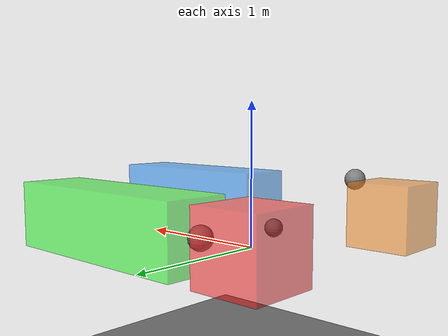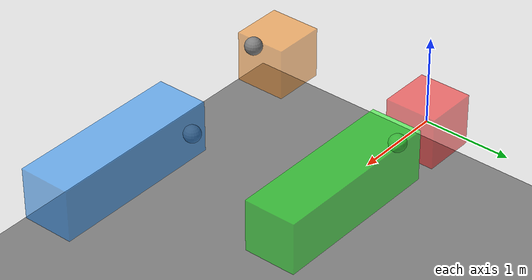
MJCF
<mujoco model="equality_weld_with_sites">
  <worldbody>
    <geom pos="0 0 -2.0" type="plane" size="4 4 0.01"/>

    <!-- static box -->
    <body name="box1" pos="0 0 0">
      <geom type="box" size="0.3 0.3 0.3" rgba="1 0 0 0.5" />
      <site name="box1_site" type="sphere" size="0.1" pos="0.5 0 0"/>
    </body>
    <body name="box2" pos="0.5 0 0">
      <freejoint/>
      <geom type="box" pos="1.03 0 0" size="1.0 0.3 0.3" rgba="0 1 0 0.5" />
      <site name="box2_site" type="sphere" size="0.1" pos="0 0 0"/>
    </body>

    <!-- second pair, offset in -Y, sites initially separated -->
    <body name="box3" pos="0 -2 0">
      <geom type="box" size="0.3 0.3 0.3" rgba="1 0.5 0 0.5" />
      <site name="box3_site" type="sphere" size="0.1" pos="0.4 0 0.3"/>
    </body>
    <body name="box4" pos="1.5 -2 0">
      <freejoint/>
      <geom type="box" pos="1.03 0 0" size="1.0 0.3 0.3" rgba="0 0.5 1 0.5" />
      <site name="box4_site" type="sphere" size="0.1" pos="-0.1 0 -0.3"/>
    </body>
  </worldbody>

  <equality>
    <weld name="sites" site1="box1_site" site2="box2_site"/>
    <weld name="sites_separated" site1="box3_site" site2="box4_site"/>
  </equality>
</mujoco>
